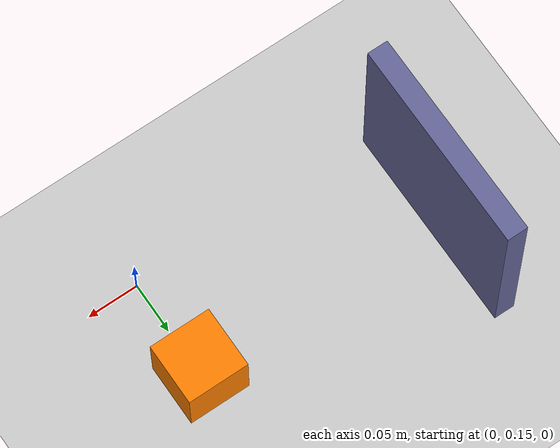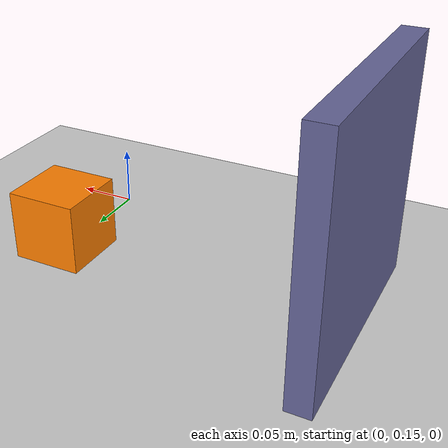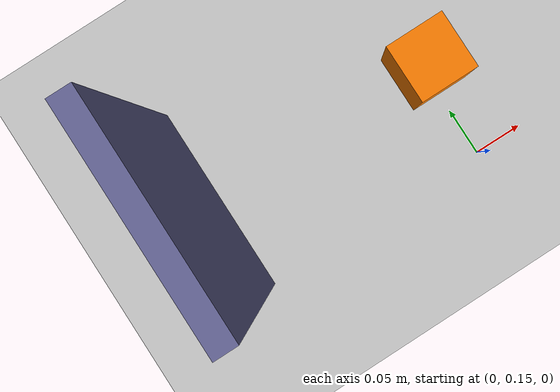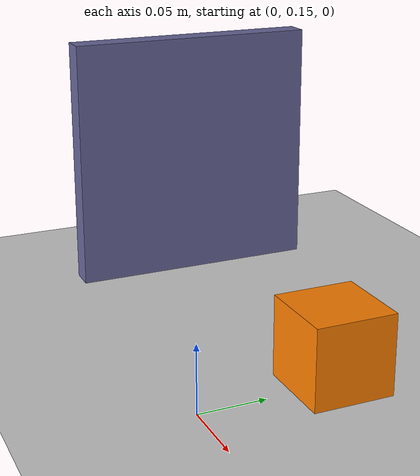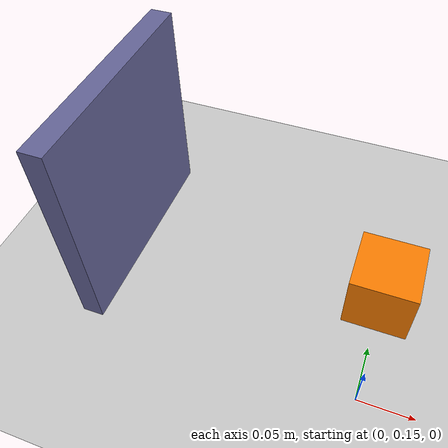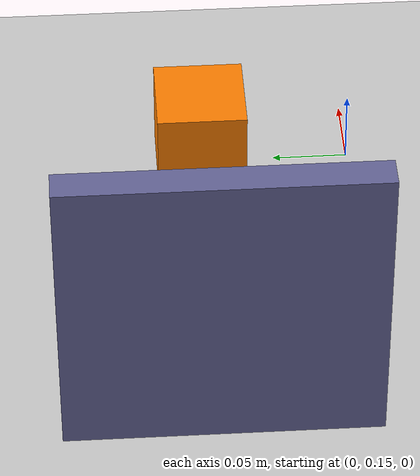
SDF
<?xml version="1.0"?>
<sdf version="1.6">
  <world name="cooperative_lift_world">

    <physics name="1ms" type="ignored">
      <max_step_size>0.001</max_step_size>
      <real_time_factor>1.0</real_time_factor>
    </physics>

    <!-- Required Ignition systems -->
    <plugin filename="ignition-gazebo-forcetorque-system"
            name="ignition::gazebo::systems::ForceTorque"/>
    <plugin filename="ignition-gazebo-physics-system"
            name="ignition::gazebo::systems::Physics"/>
    <plugin filename="ignition-gazebo-user-commands-system"
            name="ignition::gazebo::systems::UserCommands"/>
    <plugin filename="ignition-gazebo-scene-broadcaster-system"
            name="ignition::gazebo::systems::SceneBroadcaster"/>
    <plugin filename="ignition-gazebo-contact-system"
            name="ignition::gazebo::systems::Contact"/>
    <plugin filename="ignition-gazebo-forcetorque-system"
            name="ignition::gazebo::systems::ForceTorque"/>
    <plugin filename="ignition-gazebo-apply-link-wrench-system"
            name="ignition::gazebo::systems::ApplyLinkWrench"/>
    <plugin filename="ignition-gazebo-sensors-system"
            name="ignition::gazebo::systems::Sensors">
      <render_engine>ogre2</render_engine>
    </plugin>
    <plugin filename="ignition-gazebo-imu-system"
            name="ignition::gazebo::systems::Imu"/>

    <!-- Ground plane -->
    <model name="ground_plane">
      <static>true</static>
      <link name="link">
        <collision name="collision">
          <geometry>
            <plane>
              <normal>0 0 1</normal>
              <size>100 100</size>
            </plane>
          </geometry>
        </collision>
        <visual name="visual">
          <geometry>
            <plane>
              <normal>0 0 1</normal>
              <size>100 100</size>
            </plane>
          </geometry>
          <material>
            <ambient>0.8 0.8 0.8 1</ambient>
            <diffuse>0.8 0.8 0.8 1</diffuse>
            <specular>0.8 0.8 0.8 1</specular>
          </material>
        </visual>
      </link>
    </model>

    <model name="grasp_box">
      <pose>0.0 0.25 0.03 0 0 0</pose>
      <link name="box_link">
        <inertial>
          <mass>0.5</mass>
          <inertia>
            <ixx>0.00025</ixx>
            <iyy>0.00025</iyy>
            <izz>0.00025</izz>
            <ixy>0</ixy><ixz>0</ixz><iyz>0</iyz>
          </inertia>
        </inertial>
        <collision name="collision">
          <geometry>
            <box><size>0.06 0.06 0.06</size></box>
          </geometry>
          <surface>
            <friction>
              <ode>
                <mu>1.0</mu>
                <mu2>1.0</mu2>
              </ode>
            </friction>
          </surface>
        </collision>
        <visual name="visual">
          <geometry>
            <box><size>0.06 0.06 0.06</size></box>
          </geometry>
          <material>
            <ambient>1.0 0.5 0.0 1</ambient>
            <diffuse>1.0 0.5 0.0 1</diffuse>
            <specular>0.3 0.15 0.0 1</specular>
          </material>
        </visual>
      </link>
    </model>

    <model name="fixture_wall">
      <static>true</static>
      <pose>-0.25 0.25 0.10 0 0 0</pose>
      <link name="wall_link">
        <collision name="collision">
          <geometry>
            <box><size>0.02 0.20 0.20</size></box>
          </geometry>
        </collision>
        <visual name="visual">
          <geometry>
            <box><size>0.02 0.20 0.20</size></box>
          </geometry>
          <material>
            <ambient>0.4 0.4 0.6 1</ambient>
            <diffuse>0.4 0.4 0.6 1</diffuse>
            <specular>0.2 0.2 0.3 1</specular>
          </material>
        </visual>
      </link>
    </model>

  </world>
</sdf>
